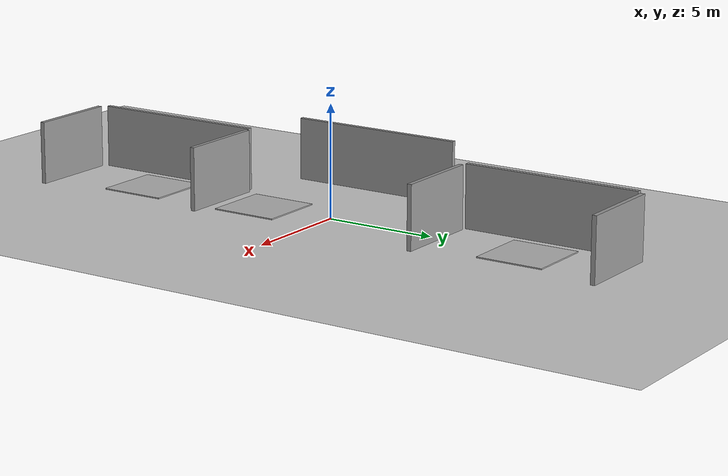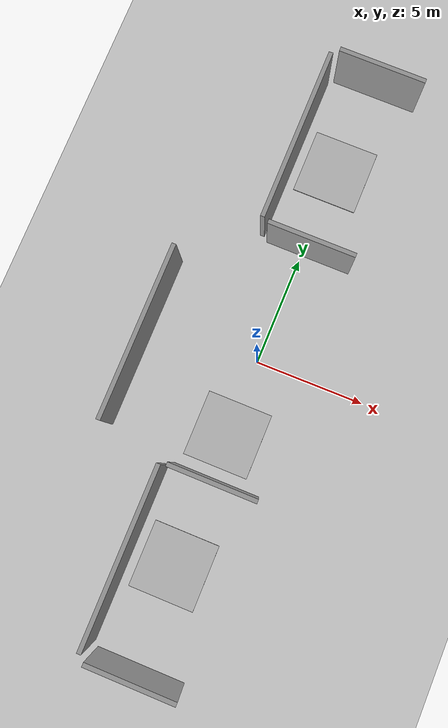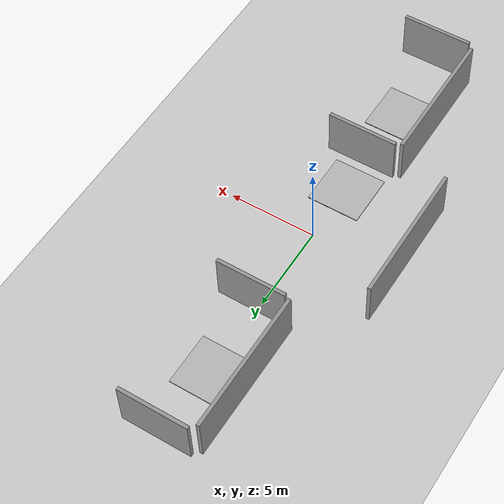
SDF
<sdf version="1.6">
 <world name="default">
  <plugin name="ros_link_attacher_plugin" filename="libgazebo_ros_link_attacher.so"/>
  <scene><shadows>0</shadows><ambient>0.4 0.4 0.4 1</ambient><background>0.7 0.7 0.7 1</background></scene>
  <physics name="default_physics" default="0" type="ode">
   <ode>
    <solver>
     <type>quick</type>
     <iters>20</iters>
     <sor>1</sor>
     <use_dynamic_moi_rescaling>0</use_dynamic_moi_rescaling>
    </solver>
    <constraints>
     <cfm>0</cfm>
     <erp>0.2</erp>
     <contact_max_correcting_vel>100</contact_max_correcting_vel>
     <contact_surface_layer>0</contact_surface_layer>
    </constraints>
   </ode>
   <real_time_update_rate>0</real_time_update_rate>
   <max_step_size>0.005</max_step_size>
   <real_time_factor>1</real_time_factor>
  </physics>
  <light name="sun" type="directional">
   <pose>0 0 10 0 -0 0</pose>
   <diffuse>0.8 0.8 0.8 1</diffuse>
   <specular>0.2 0.2 0.2 1</specular>
   <attenuation>
    <range>1000</range>
    <constant>0.9</constant>
    <linear>0.01</linear>
    <quadratic>0.001</quadratic>
   </attenuation>
   <direction>-0.5 0.1 -0.9</direction>
  </light>
  <model name="ground_plane">
   <static>1</static>
   <link name="link">
    <collision name="collision">
     <geometry><plane><normal>0 0 1</normal><size>100 100</size></plane></geometry>
     <surface>
      <contact><collide_bitmask>65535</collide_bitmask></contact>
      <friction><ode><mu>100</mu><mu2>50</mu2></ode></friction>
     </surface>
    </collision>
    <visual name="visual">
     <cast_shadows>0</cast_shadows>
     <geometry><plane><normal>0 0 1</normal><size>100 100</size></plane></geometry>
     <material>
      <script><uri>file://media/materials/scripts/gazebo.material</uri><name>Gazebo/Grey</name></script>
     </material>
    </visual>
   </link>
  </model>
  <model name="w1_1">
   <static>1</static>
   <link name="link">
    <pose>0 0 1.4 0 -0 0</pose>
    <collision name="collision"><geometry><box><size>8 0.2 2.8</size></box></geometry></collision>
    <visual name="visual">
     <cast_shadows>0</cast_shadows>
     <geometry><box><size>8 0.2 2.8</size></box></geometry>
     <material>
      <script>
       <uri>model://w1/materials/scripts</uri>
       <uri>model://w1/materials/textures</uri>
       <name>vrc/grey_wall</name>
      </script>
     </material>
    </visual>
   </link>
   <pose>-5 -1 0 0 0 -1.57</pose>
  </model>
  <model name="w1_2">
   <static>1</static>
   <link name="link">
    <pose>0 0 1.4 0 -0 0</pose>
    <collision name="collision"><geometry><box><size>8 0.2 2.8</size></box></geometry></collision>
    <visual name="visual">
     <cast_shadows>0</cast_shadows>
     <geometry><box><size>8 0.2 2.8</size></box></geometry>
     <material>
      <script>
       <uri>model://w1/materials/scripts</uri>
       <uri>model://w1/materials/textures</uri>
       <name>vrc/grey_wall</name>
      </script>
     </material>
    </visual>
   </link>
   <pose>-2 9.5 0 0 0 -1.57</pose>
  </model>
  <model name="w1_3">
   <static>1</static>
   <link name="link">
    <pose>0 0 1.4 0 -0 0</pose>
    <collision name="collision"><geometry><box><size>8 0.2 2.8</size></box></geometry></collision>
    <visual name="visual">
     <cast_shadows>0</cast_shadows>
     <geometry><box><size>8 0.2 2.8</size></box></geometry>
     <material>
      <script>
       <uri>model://w1/materials/scripts</uri>
       <uri>model://w1/materials/textures</uri>
       <name>vrc/grey_wall</name>
      </script>
     </material>
    </visual>
   </link>
   <pose>-2 -9.7 0 0 0 -1.57</pose>
  </model>
  <model name="w2_1">
   <static>1</static>
   <link name="link">
    <pose>0 0 1.4 0 -0 0</pose>
    <collision name="collision"><geometry><box><size>4 0.2 2.8</size></box></geometry></collision>
    <visual name="visual">
     <cast_shadows>0</cast_shadows>
     <geometry><box><size>4 0.2 2.8</size></box></geometry>
     <material>
      <script>
       <uri>model://w2/materials/scripts</uri>
       <uri>model://w2/materials/textures</uri>
       <name>vrc/grey_wall</name>
      </script>
     </material>
    </visual>
   </link>
   <pose>0.3 -14 0 0 -0 0</pose>
  </model>
  <model name="w2_2">
   <static>1</static>
   <link name="link">
    <pose>0 0 1.4 0 -0 0</pose>
    <collision name="collision"><geometry><box><size>4 0.2 2.8</size></box></geometry></collision>
    <visual name="visual">
     <cast_shadows>0</cast_shadows>
     <geometry><box><size>4 0.2 2.8</size></box></geometry>
     <material>
      <script>
       <uri>model://w2/materials/scripts</uri>
       <uri>model://w2/materials/textures</uri>
       <name>vrc/grey_wall</name>
      </script>
     </material>
    </visual>
   </link>
   <pose>0.3 -5.6 0 0 -0 0</pose>
  </model>
  <model name="w2_3">
   <static>1</static>
   <link name="link">
    <pose>0 0 1.4 0 -0 0</pose>
    <collision name="collision"><geometry><box><size>4 0.2 2.8</size></box></geometry></collision>
    <visual name="visual">
     <cast_shadows>0</cast_shadows>
     <geometry><box><size>4 0.2 2.8</size></box></geometry>
     <material>
      <script>
       <uri>model://w2/materials/scripts</uri>
       <uri>model://w2/materials/textures</uri>
       <name>vrc/grey_wall</name>
      </script>
     </material>
    </visual>
   </link>
   <pose>0.3 5.4 0 0 -0 0</pose>
  </model>
  <model name="w2_4">
   <static>1</static>
   <link name="link">
    <pose>0 0 1.4 0 -0 0</pose>
    <collision name="collision"><geometry><box><size>4 0.2 2.8</size></box></geometry></collision>
    <visual name="visual">
     <cast_shadows>0</cast_shadows>
     <geometry><box><size>4 0.2 2.8</size></box></geometry>
     <material>
      <script>
       <uri>model://w2/materials/scripts</uri>
       <uri>model://w2/materials/textures</uri>
       <name>vrc/grey_wall</name>
      </script>
     </material>
    </visual>
   </link>
   <pose>0.3 13.8 0 0 -0 0</pose>
  </model>
  <model name="platform_blue">
   <static>1</static>
   <link name="link"><visual name="visual"><geometry><box><size>3 3 0.05</size></box></geometry></visual></link>
   <pose>0 -9.6 0 0 -0 0</pose>
  </model>
  <model name="platform_red">
   <static>1</static>
   <link name="link"><visual name="visual"><geometry><box><size>3 3 0.05</size></box></geometry></visual></link>
   <pose>0 9.6 0 0 -0 0</pose>
  </model>
  <model name="station_left">
   <static>1</static>
   <link name="link">
    <collision name="collision"><geometry><box><size>3 3 0.05</size></box></geometry></collision>
    <visual name="visual"><geometry><box><size>3 3 0.05</size></box></geometry></visual>
   </link>
   <pose>0 -3.5 0 0 -0 0</pose>
  </model>
  <gravity>0 0 -9.81</gravity>
  <magnetic_field>6e-06 2.3e-05 -4.2e-05</magnetic_field>
  <atmosphere type="adiabatic"/>
  <audio><device>default</device></audio>
  <spherical_coordinates>
   <surface_model>EARTH_WGS84</surface_model>
   <latitude_deg>0</latitude_deg>
   <longitude_deg>0</longitude_deg>
   <elevation>0</elevation>
   <heading_deg>0</heading_deg>
  </spherical_coordinates>
 </world>
</sdf>
